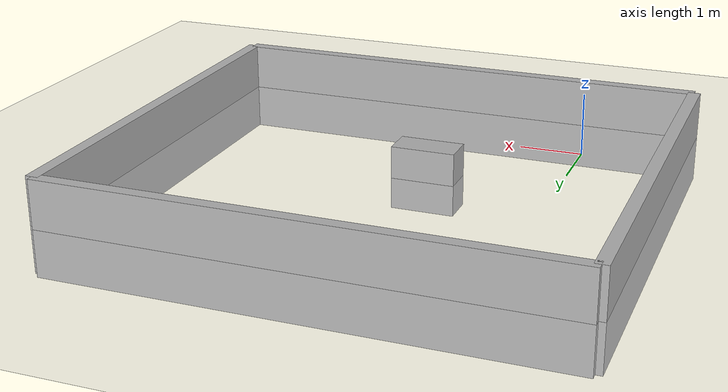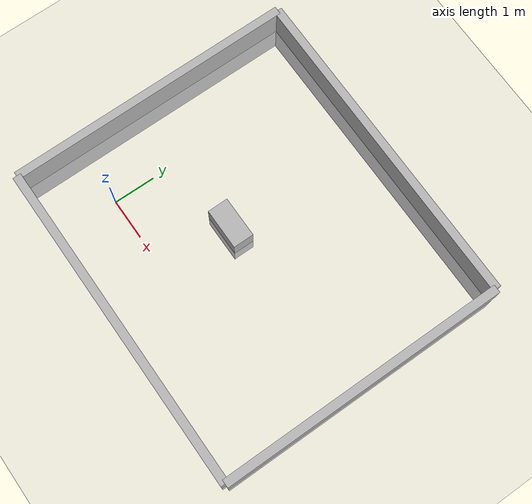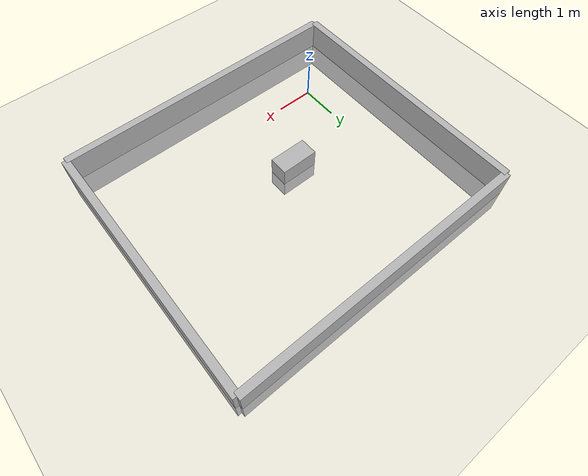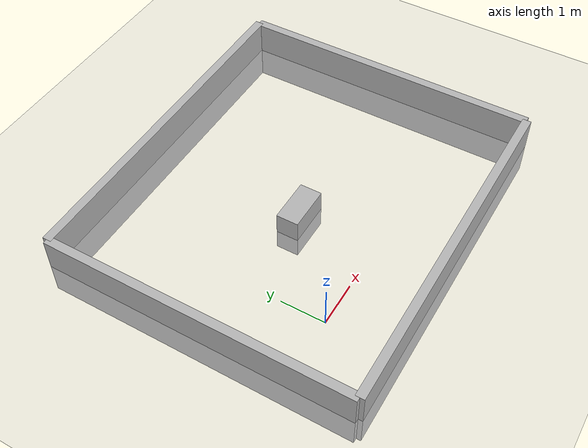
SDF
<?xml version="1.0" ?>
<sdf version="1.6">
  <world name="middle_obstacle_room">
    <include>
      <uri>model://sun</uri>
    </include>
    <include>
      <uri>model://ground_plane</uri>
    </include>

    <!-- North Wall (leaning inward along X) -->
    <model name="wall_north">
      <static>true</static>
      <link name="link">
        <collision name="collision">
          <geometry><box><size>8 0.2 1.5</size></box></geometry>
        </collision>
        <visual name="visual">
          <geometry><box><size>8 0.2 1.5</size></box></geometry>
        </visual>
        <pose>2.5 5.5 0 0 0 0</pose>
      </link>
    </model>

    <!-- South Wall (leaning inward along X) -->
    <model name="wall_south">
      <static>true</static>
      <link name="link">
        <collision name="collision">
          <geometry><box><size>8 0.2 1.5</size></box></geometry>
        </collision>
        <visual name="visual">
          <geometry><box><size>8 0.2 1.5</size></box></geometry>
        </visual>
        <pose>2.5 -1.5 0 0 0 0</pose>
      </link>
    </model>

    <!-- East Wall (leaning inward along Y) -->
    <model name="wall_east">
      <static>true</static>
      <link name="link">
        <collision name="collision">
          <geometry><box><size>0.2 7 1.5</size></box></geometry>
        </collision>
        <visual name="visual">
          <geometry><box><size>0.2 7 1.5</size></box></geometry>
        </visual>
        <pose>6.5 2 0 0 0 0</pose>
      </link>
    </model>

    <!-- West Wall (leaning inward along Y) -->
    <model name="wall_west">
      <static>true</static>
      <link name="link">
        <collision name="collision">
          <geometry><box><size>0.2 7 1.5</size></box></geometry>
        </collision>
        <visual name="visual">
          <geometry><box><size>0.2 7 1.5</size></box></geometry>
        </visual>
        <pose>-1.5 2 0 0 0 0</pose>
      </link>
    </model>

    <model name="obstacle_1">
      <static>true</static>
      <pose>2 1.75 0 0 0 0</pose>
      <link name="link">
        <collision name="collision">
          <geometry>
            <box>
              <size>1 0.5 1</size>
            </box>
          </geometry>
        </collision>
        <visual name="visual">
          <geometry>
            <box>
              <size>1 0.5 1</size>
            </box>
          </geometry>
        </visual>
      </link>
    </model>

  </world>
</sdf>
